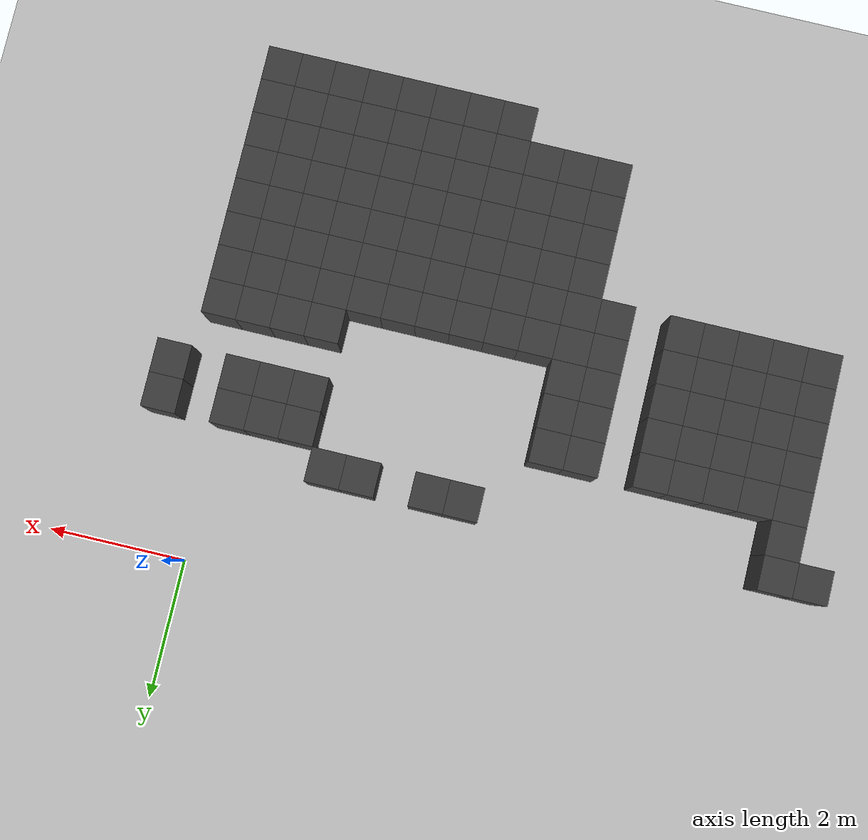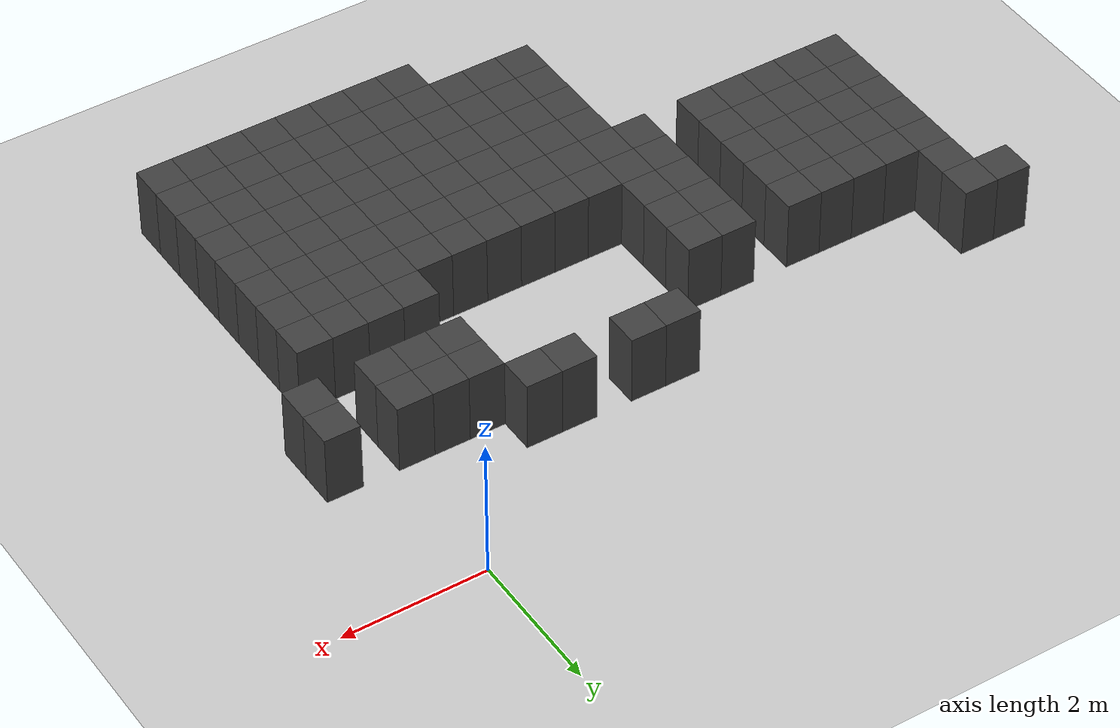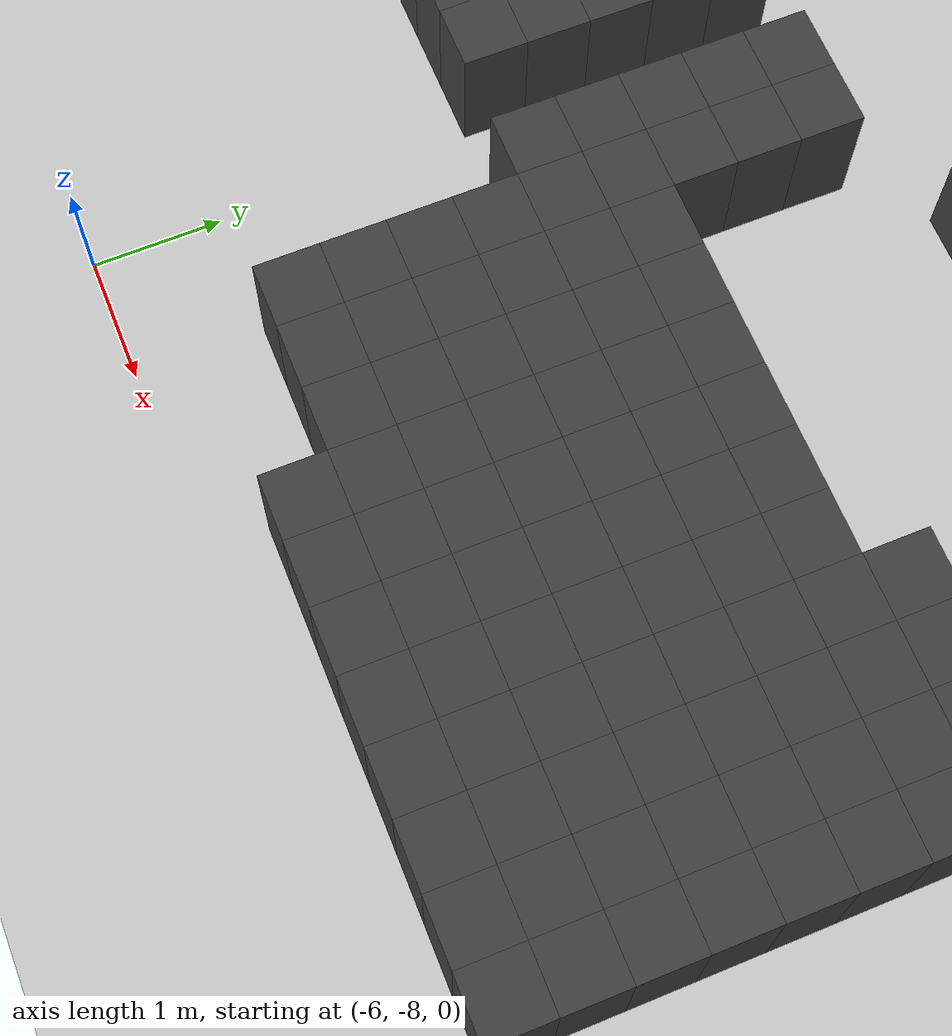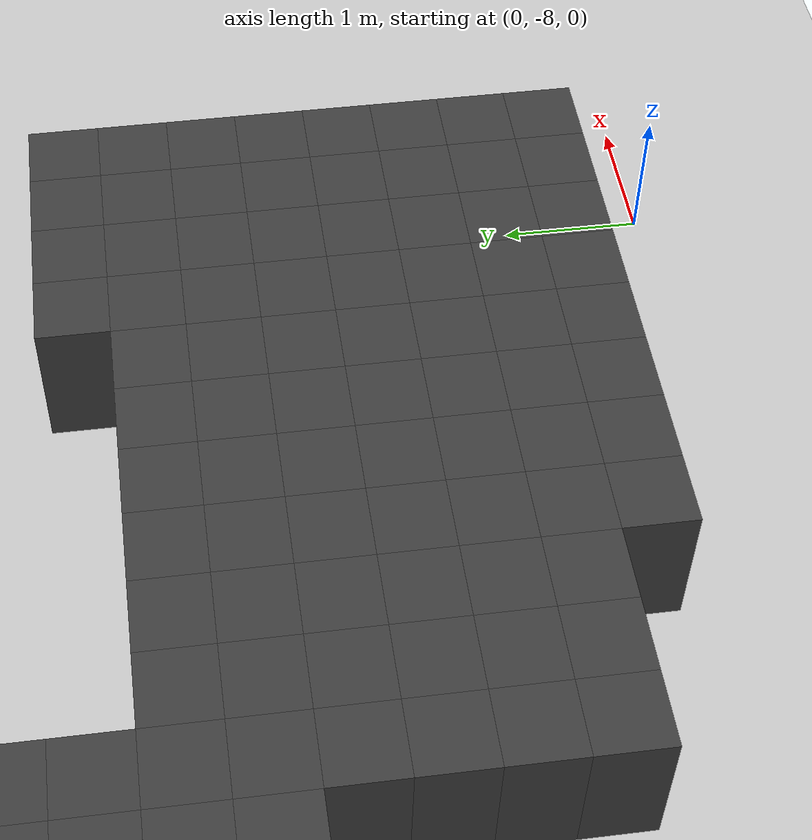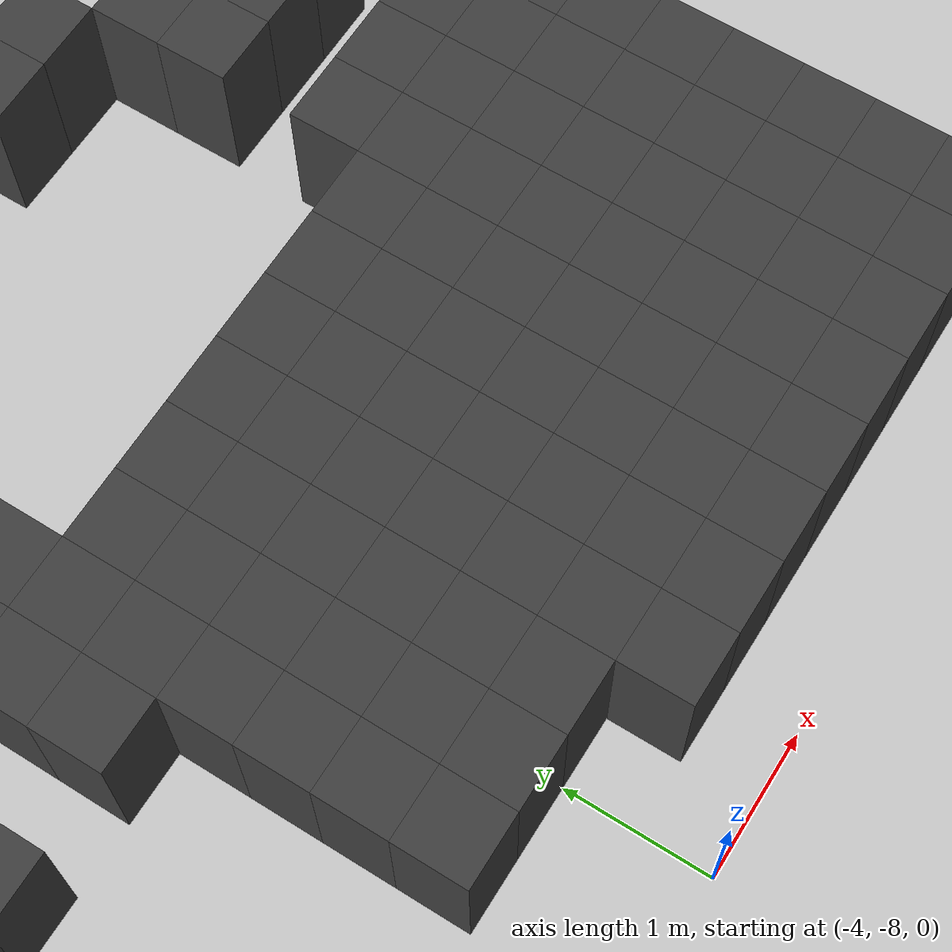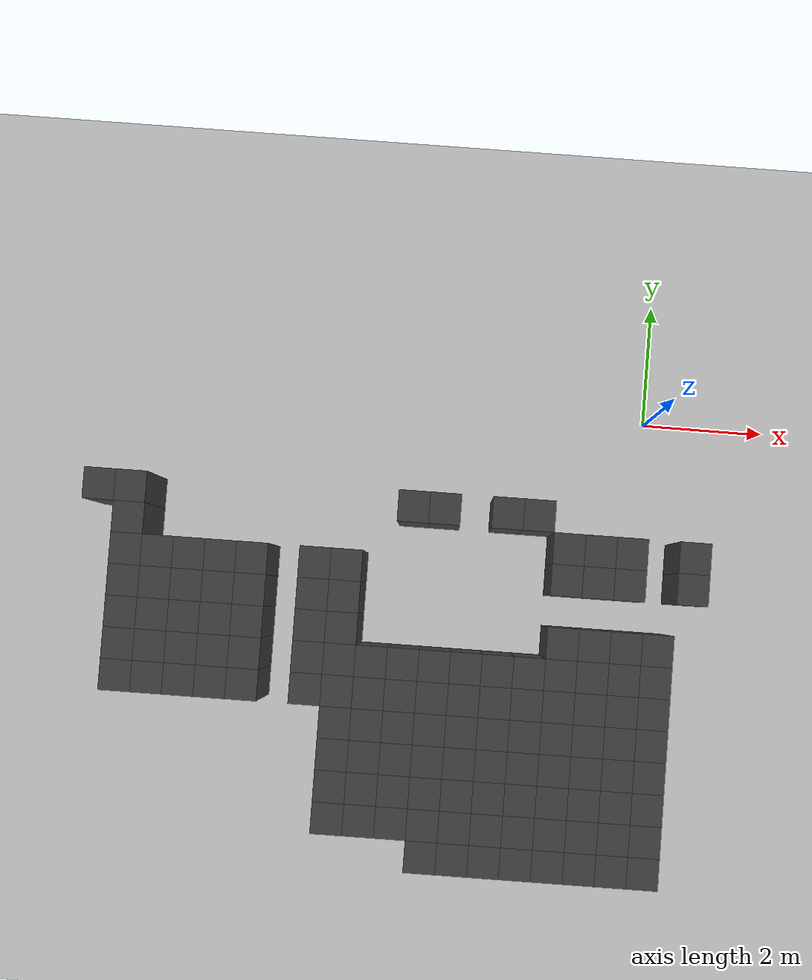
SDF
<sdf version="1.7">
 <world name="map_14190">
  <model name="ground_plane">
   <static>true</static>
   <link name="link">
    <collision name="collision">
     <geometry><plane><normal>0 0 1</normal><size>200 200</size></plane></geometry>
    </collision>
    <visual name="visual">
     <geometry><plane><normal>0 0 1</normal><size>200 200</size></plane></geometry>
     <material><ambient>0.8 0.8 0.8 1</ambient><diffuse>0.8 0.8 0.8 1</diffuse></material>
    </visual>
   </link>
  </model>
  <model name="maze_environment">
   <static>true</static>
   <link name="wall_992">
    <pose>-8.750 -1.750 0.500 0 0 0</pose>
    <collision name="col"><geometry><box><size>0.5 0.5 1.0</size></box></geometry></collision>
    <visual name="vis">
     <geometry><box><size>0.5 0.5 1.0</size></box></geometry>
     <material><ambient>0.15 0.15 0.15 1</ambient><diffuse>0.25 0.25 0.25 1</diffuse></material>
    </visual>
   </link>
   <link name="wall_993">
    <pose>-8.250 -1.750 0.500 0 0 0</pose>
    <collision name="col"><geometry><box><size>0.5 0.5 1.0</size></box></geometry></collision>
    <visual name="vis">
     <geometry><box><size>0.5 0.5 1.0</size></box></geometry>
     <material><ambient>0.15 0.15 0.15 1</ambient><diffuse>0.25 0.25 0.25 1</diffuse></material>
    </visual>
   </link>
   <link name="wall_994">
    <pose>-3.750 -1.750 0.500 0 0 0</pose>
    <collision name="col"><geometry><box><size>0.5 0.5 1.0</size></box></geometry></collision>
    <visual name="vis">
     <geometry><box><size>0.5 0.5 1.0</size></box></geometry>
     <material><ambient>0.15 0.15 0.15 1</ambient><diffuse>0.25 0.25 0.25 1</diffuse></material>
    </visual>
   </link>
   <link name="wall_995">
    <pose>-3.250 -1.750 0.500 0 0 0</pose>
    <collision name="col"><geometry><box><size>0.5 0.5 1.0</size></box></geometry></collision>
    <visual name="vis">
     <geometry><box><size>0.5 0.5 1.0</size></box></geometry>
     <material><ambient>0.15 0.15 0.15 1</ambient><diffuse>0.25 0.25 0.25 1</diffuse></material>
    </visual>
   </link>
   <link name="wall_996">
    <pose>-2.250 -1.750 0.500 0 0 0</pose>
    <collision name="col"><geometry><box><size>0.5 0.5 1.0</size></box></geometry></collision>
    <visual name="vis">
     <geometry><box><size>0.5 0.5 1.0</size></box></geometry>
     <material><ambient>0.15 0.15 0.15 1</ambient><diffuse>0.25 0.25 0.25 1</diffuse></material>
    </visual>
   </link>
   <link name="wall_997">
    <pose>-1.750 -1.750 0.500 0 0 0</pose>
    <collision name="col"><geometry><box><size>0.5 0.5 1.0</size></box></geometry></collision>
    <visual name="vis">
     <geometry><box><size>0.5 0.5 1.0</size></box></geometry>
     <material><ambient>0.15 0.15 0.15 1</ambient><diffuse>0.25 0.25 0.25 1</diffuse></material>
    </visual>
   </link>
   <link name="wall_1022">
    <pose>-8.250 -2.250 0.500 0 0 0</pose>
    <collision name="col"><geometry><box><size>0.5 0.5 1.0</size></box></geometry></collision>
    <visual name="vis">
     <geometry><box><size>0.5 0.5 1.0</size></box></geometry>
     <material><ambient>0.15 0.15 0.15 1</ambient><diffuse>0.25 0.25 0.25 1</diffuse></material>
    </visual>
   </link>
   <link name="wall_1023">
    <pose>-1.250 -2.250 0.500 0 0 0</pose>
    <collision name="col"><geometry><box><size>0.5 0.5 1.0</size></box></geometry></collision>
    <visual name="vis">
     <geometry><box><size>0.5 0.5 1.0</size></box></geometry>
     <material><ambient>0.15 0.15 0.15 1</ambient><diffuse>0.25 0.25 0.25 1</diffuse></material>
    </visual>
   </link>
   <link name="wall_1024">
    <pose>-0.750 -2.250 0.500 0 0 0</pose>
    <collision name="col"><geometry><box><size>0.5 0.5 1.0</size></box></geometry></collision>
    <visual name="vis">
     <geometry><box><size>0.5 0.5 1.0</size></box></geometry>
     <material><ambient>0.15 0.15 0.15 1</ambient><diffuse>0.25 0.25 0.25 1</diffuse></material>
    </visual>
   </link>
   <link name="wall_1025">
    <pose>-0.250 -2.250 0.500 0 0 0</pose>
    <collision name="col"><geometry><box><size>0.5 0.5 1.0</size></box></geometry></collision>
    <visual name="vis">
     <geometry><box><size>0.5 0.5 1.0</size></box></geometry>
     <material><ambient>0.15 0.15 0.15 1</ambient><diffuse>0.25 0.25 0.25 1</diffuse></material>
    </visual>
   </link>
   <link name="wall_1026">
    <pose>0.750 -2.250 0.500 0 0 0</pose>
    <collision name="col"><geometry><box><size>0.5 0.5 1.0</size></box></geometry></collision>
    <visual name="vis">
     <geometry><box><size>0.5 0.5 1.0</size></box></geometry>
     <material><ambient>0.15 0.15 0.15 1</ambient><diffuse>0.25 0.25 0.25 1</diffuse></material>
    </visual>
   </link>
   <link name="wall_1053">
    <pose>-8.250 -2.750 0.500 0 0 0</pose>
    <collision name="col"><geometry><box><size>0.5 0.5 1.0</size></box></geometry></collision>
    <visual name="vis">
     <geometry><box><size>0.5 0.5 1.0</size></box></geometry>
     <material><ambient>0.15 0.15 0.15 1</ambient><diffuse>0.25 0.25 0.25 1</diffuse></material>
    </visual>
   </link>
   <link name="wall_1054">
    <pose>-7.750 -2.750 0.500 0 0 0</pose>
    <collision name="col"><geometry><box><size>0.5 0.5 1.0</size></box></geometry></collision>
    <visual name="vis">
     <geometry><box><size>0.5 0.5 1.0</size></box></geometry>
     <material><ambient>0.15 0.15 0.15 1</ambient><diffuse>0.25 0.25 0.25 1</diffuse></material>
    </visual>
   </link>
   <link name="wall_1055">
    <pose>-7.250 -2.750 0.500 0 0 0</pose>
    <collision name="col"><geometry><box><size>0.5 0.5 1.0</size></box></geometry></collision>
    <visual name="vis">
     <geometry><box><size>0.5 0.5 1.0</size></box></geometry>
     <material><ambient>0.15 0.15 0.15 1</ambient><diffuse>0.25 0.25 0.25 1</diffuse></material>
    </visual>
   </link>
   <link name="wall_1056">
    <pose>-6.750 -2.750 0.500 0 0 0</pose>
    <collision name="col"><geometry><box><size>0.5 0.5 1.0</size></box></geometry></collision>
    <visual name="vis">
     <geometry><box><size>0.5 0.5 1.0</size></box></geometry>
     <material><ambient>0.15 0.15 0.15 1</ambient><diffuse>0.25 0.25 0.25 1</diffuse></material>
    </visual>
   </link>
   <link name="wall_1057">
    <pose>-6.250 -2.750 0.500 0 0 0</pose>
    <collision name="col"><geometry><box><size>0.5 0.5 1.0</size></box></geometry></collision>
    <visual name="vis">
     <geometry><box><size>0.5 0.5 1.0</size></box></geometry>
     <material><ambient>0.15 0.15 0.15 1</ambient><diffuse>0.25 0.25 0.25 1</diffuse></material>
    </visual>
   </link>
   <link name="wall_1058">
    <pose>-5.250 -2.750 0.500 0 0 0</pose>
    <collision name="col"><geometry><box><size>0.5 0.5 1.0</size></box></geometry></collision>
    <visual name="vis">
     <geometry><box><size>0.5 0.5 1.0</size></box></geometry>
     <material><ambient>0.15 0.15 0.15 1</ambient><diffuse>0.25 0.25 0.25 1</diffuse></material>
    </visual>
   </link>
   <link name="wall_1059">
    <pose>-4.750 -2.750 0.500 0 0 0</pose>
    <collision name="col"><geometry><box><size>0.5 0.5 1.0</size></box></geometry></collision>
    <visual name="vis">
     <geometry><box><size>0.5 0.5 1.0</size></box></geometry>
     <material><ambient>0.15 0.15 0.15 1</ambient><diffuse>0.25 0.25 0.25 1</diffuse></material>
    </visual>
   </link>
   <link name="wall_1060">
    <pose>-1.250 -2.750 0.500 0 0 0</pose>
    <collision name="col"><geometry><box><size>0.5 0.5 1.0</size></box></geometry></collision>
    <visual name="vis">
     <geometry><box><size>0.5 0.5 1.0</size></box></geometry>
     <material><ambient>0.15 0.15 0.15 1</ambient><diffuse>0.25 0.25 0.25 1</diffuse></material>
    </visual>
   </link>
   <link name="wall_1061">
    <pose>-0.750 -2.750 0.500 0 0 0</pose>
    <collision name="col"><geometry><box><size>0.5 0.5 1.0</size></box></geometry></collision>
    <visual name="vis">
     <geometry><box><size>0.5 0.5 1.0</size></box></geometry>
     <material><ambient>0.15 0.15 0.15 1</ambient><diffuse>0.25 0.25 0.25 1</diffuse></material>
    </visual>
   </link>
   <link name="wall_1062">
    <pose>-0.250 -2.750 0.500 0 0 0</pose>
    <collision name="col"><geometry><box><size>0.5 0.5 1.0</size></box></geometry></collision>
    <visual name="vis">
     <geometry><box><size>0.5 0.5 1.0</size></box></geometry>
     <material><ambient>0.15 0.15 0.15 1</ambient><diffuse>0.25 0.25 0.25 1</diffuse></material>
    </visual>
   </link>
   <link name="wall_1063">
    <pose>0.750 -2.750 0.500 0 0 0</pose>
    <collision name="col"><geometry><box><size>0.5 0.5 1.0</size></box></geometry></collision>
    <visual name="vis">
     <geometry><box><size>0.5 0.5 1.0</size></box></geometry>
     <material><ambient>0.15 0.15 0.15 1</ambient><diffuse>0.25 0.25 0.25 1</diffuse></material>
    </visual>
   </link>
   <link name="wall_1090">
    <pose>-8.250 -3.250 0.500 0 0 0</pose>
    <collision name="col"><geometry><box><size>0.5 0.5 1.0</size></box></geometry></collision>
    <visual name="vis">
     <geometry><box><size>0.5 0.5 1.0</size></box></geometry>
     <material><ambient>0.15 0.15 0.15 1</ambient><diffuse>0.25 0.25 0.25 1</diffuse></material>
    </visual>
   </link>
   <link name="wall_1091">
    <pose>-7.750 -3.250 0.500 0 0 0</pose>
    <collision name="col"><geometry><box><size>0.5 0.5 1.0</size></box></geometry></collision>
    <visual name="vis">
     <geometry><box><size>0.5 0.5 1.0</size></box></geometry>
     <material><ambient>0.15 0.15 0.15 1</ambient><diffuse>0.25 0.25 0.25 1</diffuse></material>
    </visual>
   </link>
   <link name="wall_1092">
    <pose>-7.250 -3.250 0.500 0 0 0</pose>
    <collision name="col"><geometry><box><size>0.5 0.5 1.0</size></box></geometry></collision>
    <visual name="vis">
     <geometry><box><size>0.5 0.5 1.0</size></box></geometry>
     <material><ambient>0.15 0.15 0.15 1</ambient><diffuse>0.25 0.25 0.25 1</diffuse></material>
    </visual>
   </link>
   <link name="wall_1093">
    <pose>-6.750 -3.250 0.500 0 0 0</pose>
    <collision name="col"><geometry><box><size>0.5 0.5 1.0</size></box></geometry></collision>
    <visual name="vis">
     <geometry><box><size>0.5 0.5 1.0</size></box></geometry>
     <material><ambient>0.15 0.15 0.15 1</ambient><diffuse>0.25 0.25 0.25 1</diffuse></material>
    </visual>
   </link>
   <link name="wall_1094">
    <pose>-6.250 -3.250 0.500 0 0 0</pose>
    <collision name="col"><geometry><box><size>0.5 0.5 1.0</size></box></geometry></collision>
    <visual name="vis">
     <geometry><box><size>0.5 0.5 1.0</size></box></geometry>
     <material><ambient>0.15 0.15 0.15 1</ambient><diffuse>0.25 0.25 0.25 1</diffuse></material>
    </visual>
   </link>
   <link name="wall_1095">
    <pose>-5.250 -3.250 0.500 0 0 0</pose>
    <collision name="col"><geometry><box><size>0.5 0.5 1.0</size></box></geometry></collision>
    <visual name="vis">
     <geometry><box><size>0.5 0.5 1.0</size></box></geometry>
     <material><ambient>0.15 0.15 0.15 1</ambient><diffuse>0.25 0.25 0.25 1</diffuse></material>
    </visual>
   </link>
   <link name="wall_1096">
    <pose>-4.750 -3.250 0.500 0 0 0</pose>
    <collision name="col"><geometry><box><size>0.5 0.5 1.0</size></box></geometry></collision>
    <visual name="vis">
     <geometry><box><size>0.5 0.5 1.0</size></box></geometry>
     <material><ambient>0.15 0.15 0.15 1</ambient><diffuse>0.25 0.25 0.25 1</diffuse></material>
    </visual>
   </link>
   <link name="wall_1124">
    <pose>-8.250 -3.750 0.500 0 0 0</pose>
    <collision name="col"><geometry><box><size>0.5 0.5 1.0</size></box></geometry></collision>
    <visual name="vis">
     <geometry><box><size>0.5 0.5 1.0</size></box></geometry>
     <material><ambient>0.15 0.15 0.15 1</ambient><diffuse>0.25 0.25 0.25 1</diffuse></material>
    </visual>
   </link>
   <link name="wall_1125">
    <pose>-7.750 -3.750 0.500 0 0 0</pose>
    <collision name="col"><geometry><box><size>0.5 0.5 1.0</size></box></geometry></collision>
    <visual name="vis">
     <geometry><box><size>0.5 0.5 1.0</size></box></geometry>
     <material><ambient>0.15 0.15 0.15 1</ambient><diffuse>0.25 0.25 0.25 1</diffuse></material>
    </visual>
   </link>
   <link name="wall_1126">
    <pose>-7.250 -3.750 0.500 0 0 0</pose>
    <collision name="col"><geometry><box><size>0.5 0.5 1.0</size></box></geometry></collision>
    <visual name="vis">
     <geometry><box><size>0.5 0.5 1.0</size></box></geometry>
     <material><ambient>0.15 0.15 0.15 1</ambient><diffuse>0.25 0.25 0.25 1</diffuse></material>
    </visual>
   </link>
   <link name="wall_1127">
    <pose>-6.750 -3.750 0.500 0 0 0</pose>
    <collision name="col"><geometry><box><size>0.5 0.5 1.0</size></box></geometry></collision>
    <visual name="vis">
     <geometry><box><size>0.5 0.5 1.0</size></box></geometry>
     <material><ambient>0.15 0.15 0.15 1</ambient><diffuse>0.25 0.25 0.25 1</diffuse></material>
    </visual>
   </link>
   <link name="wall_1128">
    <pose>-6.250 -3.750 0.500 0 0 0</pose>
    <collision name="col"><geometry><box><size>0.5 0.5 1.0</size></box></geometry></collision>
    <visual name="vis">
     <geometry><box><size>0.5 0.5 1.0</size></box></geometry>
     <material><ambient>0.15 0.15 0.15 1</ambient><diffuse>0.25 0.25 0.25 1</diffuse></material>
    </visual>
   </link>
   <link name="wall_1129">
    <pose>-5.250 -3.750 0.500 0 0 0</pose>
    <collision name="col"><geometry><box><size>0.5 0.5 1.0</size></box></geometry></collision>
    <visual name="vis">
     <geometry><box><size>0.5 0.5 1.0</size></box></geometry>
     <material><ambient>0.15 0.15 0.15 1</ambient><diffuse>0.25 0.25 0.25 1</diffuse></material>
    </visual>
   </link>
   <link name="wall_1130">
    <pose>-4.750 -3.750 0.500 0 0 0</pose>
    <collision name="col"><geometry><box><size>0.5 0.5 1.0</size></box></geometry></collision>
    <visual name="vis">
     <geometry><box><size>0.5 0.5 1.0</size></box></geometry>
     <material><ambient>0.15 0.15 0.15 1</ambient><diffuse>0.25 0.25 0.25 1</diffuse></material>
    </visual>
   </link>
   <link name="wall_1131">
    <pose>-1.250 -3.750 0.500 0 0 0</pose>
    <collision name="col"><geometry><box><size>0.5 0.5 1.0</size></box></geometry></collision>
    <visual name="vis">
     <geometry><box><size>0.5 0.5 1.0</size></box></geometry>
     <material><ambient>0.15 0.15 0.15 1</ambient><diffuse>0.25 0.25 0.25 1</diffuse></material>
    </visual>
   </link>
   <link name="wall_1132">
    <pose>-0.750 -3.750 0.500 0 0 0</pose>
    <collision name="col"><geometry><box><size>0.5 0.5 1.0</size></box></geometry></collision>
    <visual name="vis">
     <geometry><box><size>0.5 0.5 1.0</size></box></geometry>
     <material><ambient>0.15 0.15 0.15 1</ambient><diffuse>0.25 0.25 0.25 1</diffuse></material>
    </visual>
   </link>
   <link name="wall_1133">
    <pose>-0.250 -3.750 0.500 0 0 0</pose>
    <collision name="col"><geometry><box><size>0.5 0.5 1.0</size></box></geometry></collision>
    <visual name="vis">
     <geometry><box><size>0.5 0.5 1.0</size></box></geometry>
     <material><ambient>0.15 0.15 0.15 1</ambient><diffuse>0.25 0.25 0.25 1</diffuse></material>
    </visual>
   </link>
   <link name="wall_1134">
    <pose>0.250 -3.750 0.500 0 0 0</pose>
    <collision name="col"><geometry><box><size>0.5 0.5 1.0</size></box></geometry></collision>
    <visual name="vis">
     <geometry><box><size>0.5 0.5 1.0</size></box></geometry>
     <material><ambient>0.15 0.15 0.15 1</ambient><diffuse>0.25 0.25 0.25 1</diffuse></material>
    </visual>
   </link>
   <link name="wall_1159">
    <pose>-8.250 -4.250 0.500 0 0 0</pose>
    <collision name="col"><geometry><box><size>0.5 0.5 1.0</size></box></geometry></collision>
    <visual name="vis">
     <geometry><box><size>0.5 0.5 1.0</size></box></geometry>
     <material><ambient>0.15 0.15 0.15 1</ambient><diffuse>0.25 0.25 0.25 1</diffuse></material>
    </visual>
   </link>
   <link name="wall_1160">
    <pose>-7.750 -4.250 0.500 0 0 0</pose>
    <collision name="col"><geometry><box><size>0.5 0.5 1.0</size></box></geometry></collision>
    <visual name="vis">
     <geometry><box><size>0.5 0.5 1.0</size></box></geometry>
     <material><ambient>0.15 0.15 0.15 1</ambient><diffuse>0.25 0.25 0.25 1</diffuse></material>
    </visual>
   </link>
   <link name="wall_1161">
    <pose>-7.250 -4.250 0.500 0 0 0</pose>
    <collision name="col"><geometry><box><size>0.5 0.5 1.0</size></box></geometry></collision>
    <visual name="vis">
     <geometry><box><size>0.5 0.5 1.0</size></box></geometry>
     <material><ambient>0.15 0.15 0.15 1</ambient><diffuse>0.25 0.25 0.25 1</diffuse></material>
    </visual>
   </link>
   <link name="wall_1162">
    <pose>-6.750 -4.250 0.500 0 0 0</pose>
    <collision name="col"><geometry><box><size>0.5 0.5 1.0</size></box></geometry></collision>
    <visual name="vis">
     <geometry><box><size>0.5 0.5 1.0</size></box></geometry>
     <material><ambient>0.15 0.15 0.15 1</ambient><diffuse>0.25 0.25 0.25 1</diffuse></material>
    </visual>
   </link>
   <link name="wall_1163">
    <pose>-6.250 -4.250 0.500 0 0 0</pose>
    <collision name="col"><geometry><box><size>0.5 0.5 1.0</size></box></geometry></collision>
    <visual name="vis">
     <geometry><box><size>0.5 0.5 1.0</size></box></geometry>
     <material><ambient>0.15 0.15 0.15 1</ambient><diffuse>0.25 0.25 0.25 1</diffuse></material>
    </visual>
   </link>
   <link name="wall_1164">
    <pose>-5.250 -4.250 0.500 0 0 0</pose>
    <collision name="col"><geometry><box><size>0.5 0.5 1.0</size></box></geometry></collision>
    <visual name="vis">
     <geometry><box><size>0.5 0.5 1.0</size></box></geometry>
     <material><ambient>0.15 0.15 0.15 1</ambient><diffuse>0.25 0.25 0.25 1</diffuse></material>
    </visual>
   </link>
   <link name="wall_1165">
    <pose>-4.750 -4.250 0.500 0 0 0</pose>
    <collision name="col"><geometry><box><size>0.5 0.5 1.0</size></box></geometry></collision>
    <visual name="vis">
     <geometry><box><size>0.5 0.5 1.0</size></box></geometry>
     <material><ambient>0.15 0.15 0.15 1</ambient><diffuse>0.25 0.25 0.25 1</diffuse></material>
    </visual>
   </link>
   <link name="wall_1166">
    <pose>-4.250 -4.250 0.500 0 0 0</pose>
    <collision name="col"><geometry><box><size>0.5 0.5 1.0</size></box></geometry></collision>
    <visual name="vis">
     <geometry><box><size>0.5 0.5 1.0</size></box></geometry>
     <material><ambient>0.15 0.15 0.15 1</ambient><diffuse>0.25 0.25 0.25 1</diffuse></material>
    </visual>
   </link>
   <link name="wall_1167">
    <pose>-3.750 -4.250 0.500 0 0 0</pose>
    <collision name="col"><geometry><box><size>0.5 0.5 1.0</size></box></geometry></collision>
    <visual name="vis">
     <geometry><box><size>0.5 0.5 1.0</size></box></geometry>
     <material><ambient>0.15 0.15 0.15 1</ambient><diffuse>0.25 0.25 0.25 1</diffuse></material>
    </visual>
   </link>
   <link name="wall_1168">
    <pose>-3.250 -4.250 0.500 0 0 0</pose>
    <collision name="col"><geometry><box><size>0.5 0.5 1.0</size></box></geometry></collision>
    <visual name="vis">
     <geometry><box><size>0.5 0.5 1.0</size></box></geometry>
     <material><ambient>0.15 0.15 0.15 1</ambient><diffuse>0.25 0.25 0.25 1</diffuse></material>
    </visual>
   </link>
   <link name="wall_1169">
    <pose>-2.750 -4.250 0.500 0 0 0</pose>
    <collision name="col"><geometry><box><size>0.5 0.5 1.0</size></box></geometry></collision>
    <visual name="vis">
     <geometry><box><size>0.5 0.5 1.0</size></box></geometry>
     <material><ambient>0.15 0.15 0.15 1</ambient><diffuse>0.25 0.25 0.25 1</diffuse></material>
    </visual>
   </link>
   <link name="wall_1170">
    <pose>-2.250 -4.250 0.500 0 0 0</pose>
    <collision name="col"><geometry><box><size>0.5 0.5 1.0</size></box></geometry></collision>
    <visual name="vis">
     <geometry><box><size>0.5 0.5 1.0</size></box></geometry>
     <material><ambient>0.15 0.15 0.15 1</ambient><diffuse>0.25 0.25 0.25 1</diffuse></material>
    </visual>
   </link>
   <link name="wall_1171">
    <pose>-1.750 -4.250 0.500 0 0 0</pose>
    <collision name="col"><geometry><box><size>0.5 0.5 1.0</size></box></geometry></collision>
    <visual name="vis">
     <geometry><box><size>0.5 0.5 1.0</size></box></geometry>
     <material><ambient>0.15 0.15 0.15 1</ambient><diffuse>0.25 0.25 0.25 1</diffuse></material>
    </visual>
   </link>
   <link name="wall_1172">
    <pose>-1.250 -4.250 0.500 0 0 0</pose>
    <collision name="col"><geometry><box><size>0.5 0.5 1.0</size></box></geometry></collision>
    <visual name="vis">
     <geometry><box><size>0.5 0.5 1.0</size></box></geometry>
     <material><ambient>0.15 0.15 0.15 1</ambient><diffuse>0.25 0.25 0.25 1</diffuse></material>
    </visual>
   </link>
   <link name="wall_1173">
    <pose>-0.750 -4.250 0.500 0 0 0</pose>
    <collision name="col"><geometry><box><size>0.5 0.5 1.0</size></box></geometry></collision>
    <visual name="vis">
     <geometry><box><size>0.5 0.5 1.0</size></box></geometry>
     <material><ambient>0.15 0.15 0.15 1</ambient><diffuse>0.25 0.25 0.25 1</diffuse></material>
    </visual>
   </link>
   <link name="wall_1174">
    <pose>-0.250 -4.250 0.500 0 0 0</pose>
    <collision name="col"><geometry><box><size>0.5 0.5 1.0</size></box></geometry></collision>
    <visual name="vis">
     <geometry><box><size>0.5 0.5 1.0</size></box></geometry>
     <material><ambient>0.15 0.15 0.15 1</ambient><diffuse>0.25 0.25 0.25 1</diffuse></material>
    </visual>
   </link>
   <link name="wall_1175">
    <pose>0.250 -4.250 0.500 0 0 0</pose>
    <collision name="col"><geometry><box><size>0.5 0.5 1.0</size></box></geometry></collision>
    <visual name="vis">
     <geometry><box><size>0.5 0.5 1.0</size></box></geometry>
     <material><ambient>0.15 0.15 0.15 1</ambient><diffuse>0.25 0.25 0.25 1</diffuse></material>
    </visual>
   </link>
   <link name="wall_1200">
    <pose>-8.250 -4.750 0.500 0 0 0</pose>
    <collision name="col"><geometry><box><size>0.5 0.5 1.0</size></box></geometry></collision>
    <visual name="vis">
     <geometry><box><size>0.5 0.5 1.0</size></box></geometry>
     <material><ambient>0.15 0.15 0.15 1</ambient><diffuse>0.25 0.25 0.25 1</diffuse></material>
    </visual>
   </link>
   <link name="wall_1201">
    <pose>-7.750 -4.750 0.500 0 0 0</pose>
    <collision name="col"><geometry><box><size>0.5 0.5 1.0</size></box></geometry></collision>
    <visual name="vis">
     <geometry><box><size>0.5 0.5 1.0</size></box></geometry>
     <material><ambient>0.15 0.15 0.15 1</ambient><diffuse>0.25 0.25 0.25 1</diffuse></material>
    </visual>
   </link>
   <link name="wall_1202">
    <pose>-7.250 -4.750 0.500 0 0 0</pose>
    <collision name="col"><geometry><box><size>0.5 0.5 1.0</size></box></geometry></collision>
    <visual name="vis">
     <geometry><box><size>0.5 0.5 1.0</size></box></geometry>
     <material><ambient>0.15 0.15 0.15 1</ambient><diffuse>0.25 0.25 0.25 1</diffuse></material>
    </visual>
   </link>
   <link name="wall_1203">
    <pose>-6.750 -4.750 0.500 0 0 0</pose>
    <collision name="col"><geometry><box><size>0.5 0.5 1.0</size></box></geometry></collision>
    <visual name="vis">
     <geometry><box><size>0.5 0.5 1.0</size></box></geometry>
     <material><ambient>0.15 0.15 0.15 1</ambient><diffuse>0.25 0.25 0.25 1</diffuse></material>
    </visual>
   </link>
   <link name="wall_1204">
    <pose>-6.250 -4.750 0.500 0 0 0</pose>
    <collision name="col"><geometry><box><size>0.5 0.5 1.0</size></box></geometry></collision>
    <visual name="vis">
     <geometry><box><size>0.5 0.5 1.0</size></box></geometry>
     <material><ambient>0.15 0.15 0.15 1</ambient><diffuse>0.25 0.25 0.25 1</diffuse></material>
    </visual>
   </link>
   <link name="wall_1205">
    <pose>-5.250 -4.750 0.500 0 0 0</pose>
    <collision name="col"><geometry><box><size>0.5 0.5 1.0</size></box></geometry></collision>
    <visual name="vis">
     <geometry><box><size>0.5 0.5 1.0</size></box></geometry>
     <material><ambient>0.15 0.15 0.15 1</ambient><diffuse>0.25 0.25 0.25 1</diffuse></material>
    </visual>
   </link>
   <link name="wall_1206">
    <pose>-4.750 -4.750 0.500 0 0 0</pose>
    <collision name="col"><geometry><box><size>0.5 0.5 1.0</size></box></geometry></collision>
    <visual name="vis">
     <geometry><box><size>0.5 0.5 1.0</size></box></geometry>
     <material><ambient>0.15 0.15 0.15 1</ambient><diffuse>0.25 0.25 0.25 1</diffuse></material>
    </visual>
   </link>
   <link name="wall_1207">
    <pose>-4.250 -4.750 0.500 0 0 0</pose>
    <collision name="col"><geometry><box><size>0.5 0.5 1.0</size></box></geometry></collision>
    <visual name="vis">
     <geometry><box><size>0.5 0.5 1.0</size></box></geometry>
     <material><ambient>0.15 0.15 0.15 1</ambient><diffuse>0.25 0.25 0.25 1</diffuse></material>
    </visual>
   </link>
   <link name="wall_1208">
    <pose>-3.750 -4.750 0.500 0 0 0</pose>
    <collision name="col"><geometry><box><size>0.5 0.5 1.0</size></box></geometry></collision>
    <visual name="vis">
     <geometry><box><size>0.5 0.5 1.0</size></box></geometry>
     <material><ambient>0.15 0.15 0.15 1</ambient><diffuse>0.25 0.25 0.25 1</diffuse></material>
    </visual>
   </link>
   <link name="wall_1209">
    <pose>-3.250 -4.750 0.500 0 0 0</pose>
    <collision name="col"><geometry><box><size>0.5 0.5 1.0</size></box></geometry></collision>
    <visual name="vis">
     <geometry><box><size>0.5 0.5 1.0</size></box></geometry>
     <material><ambient>0.15 0.15 0.15 1</ambient><diffuse>0.25 0.25 0.25 1</diffuse></material>
    </visual>
   </link>
   <link name="wall_1210">
    <pose>-2.750 -4.750 0.500 0 0 0</pose>
    <collision name="col"><geometry><box><size>0.5 0.5 1.0</size></box></geometry></collision>
    <visual name="vis">
     <geometry><box><size>0.5 0.5 1.0</size></box></geometry>
     <material><ambient>0.15 0.15 0.15 1</ambient><diffuse>0.25 0.25 0.25 1</diffuse></material>
    </visual>
   </link>
   <link name="wall_1211">
    <pose>-2.250 -4.750 0.500 0 0 0</pose>
    <collision name="col"><geometry><box><size>0.5 0.5 1.0</size></box></geometry></collision>
    <visual name="vis">
     <geometry><box><size>0.5 0.5 1.0</size></box></geometry>
     <material><ambient>0.15 0.15 0.15 1</ambient><diffuse>0.25 0.25 0.25 1</diffuse></material>
    </visual>
   </link>
   <link name="wall_1212">
    <pose>-1.750 -4.750 0.500 0 0 0</pose>
    <collision name="col"><geometry><box><size>0.5 0.5 1.0</size></box></geometry></collision>
    <visual name="vis">
     <geometry><box><size>0.5 0.5 1.0</size></box></geometry>
     <material><ambient>0.15 0.15 0.15 1</ambient><diffuse>0.25 0.25 0.25 1</diffuse></material>
    </visual>
   </link>
   <link name="wall_1213">
    <pose>-1.250 -4.750 0.500 0 0 0</pose>
    <collision name="col"><geometry><box><size>0.5 0.5 1.0</size></box></geometry></collision>
    <visual name="vis">
     <geometry><box><size>0.5 0.5 1.0</size></box></geometry>
     <material><ambient>0.15 0.15 0.15 1</ambient><diffuse>0.25 0.25 0.25 1</diffuse></material>
    </visual>
   </link>
   <link name="wall_1214">
    <pose>-0.750 -4.750 0.500 0 0 0</pose>
    <collision name="col"><geometry><box><size>0.5 0.5 1.0</size></box></geometry></collision>
    <visual name="vis">
     <geometry><box><size>0.5 0.5 1.0</size></box></geometry>
     <material><ambient>0.15 0.15 0.15 1</ambient><diffuse>0.25 0.25 0.25 1</diffuse></material>
    </visual>
   </link>
   <link name="wall_1215">
    <pose>-0.250 -4.750 0.500 0 0 0</pose>
    <collision name="col"><geometry><box><size>0.5 0.5 1.0</size></box></geometry></collision>
    <visual name="vis">
     <geometry><box><size>0.5 0.5 1.0</size></box></geometry>
     <material><ambient>0.15 0.15 0.15 1</ambient><diffuse>0.25 0.25 0.25 1</diffuse></material>
    </visual>
   </link>
   <link name="wall_1216">
    <pose>0.250 -4.750 0.500 0 0 0</pose>
    <collision name="col"><geometry><box><size>0.5 0.5 1.0</size></box></geometry></collision>
    <visual name="vis">
     <geometry><box><size>0.5 0.5 1.0</size></box></geometry>
     <material><ambient>0.15 0.15 0.15 1</ambient><diffuse>0.25 0.25 0.25 1</diffuse></material>
    </visual>
   </link>
   <link name="wall_1233">
    <pose>-4.750 -5.250 0.500 0 0 0</pose>
    <collision name="col"><geometry><box><size>0.5 0.5 1.0</size></box></geometry></collision>
    <visual name="vis">
     <geometry><box><size>0.5 0.5 1.0</size></box></geometry>
     <material><ambient>0.15 0.15 0.15 1</ambient><diffuse>0.25 0.25 0.25 1</diffuse></material>
    </visual>
   </link>
   <link name="wall_1234">
    <pose>-4.250 -5.250 0.500 0 0 0</pose>
    <collision name="col"><geometry><box><size>0.5 0.5 1.0</size></box></geometry></collision>
    <visual name="vis">
     <geometry><box><size>0.5 0.5 1.0</size></box></geometry>
     <material><ambient>0.15 0.15 0.15 1</ambient><diffuse>0.25 0.25 0.25 1</diffuse></material>
    </visual>
   </link>
   <link name="wall_1235">
    <pose>-3.750 -5.250 0.500 0 0 0</pose>
    <collision name="col"><geometry><box><size>0.5 0.5 1.0</size></box></geometry></collision>
    <visual name="vis">
     <geometry><box><size>0.5 0.5 1.0</size></box></geometry>
     <material><ambient>0.15 0.15 0.15 1</ambient><diffuse>0.25 0.25 0.25 1</diffuse></material>
    </visual>
   </link>
   <link name="wall_1236">
    <pose>-3.250 -5.250 0.500 0 0 0</pose>
    <collision name="col"><geometry><box><size>0.5 0.5 1.0</size></box></geometry></collision>
    <visual name="vis">
     <geometry><box><size>0.5 0.5 1.0</size></box></geometry>
     <material><ambient>0.15 0.15 0.15 1</ambient><diffuse>0.25 0.25 0.25 1</diffuse></material>
    </visual>
   </link>
   <link name="wall_1237">
    <pose>-2.750 -5.250 0.500 0 0 0</pose>
    <collision name="col"><geometry><box><size>0.5 0.5 1.0</size></box></geometry></collision>
    <visual name="vis">
     <geometry><box><size>0.5 0.5 1.0</size></box></geometry>
     <material><ambient>0.15 0.15 0.15 1</ambient><diffuse>0.25 0.25 0.25 1</diffuse></material>
    </visual>
   </link>
   <link name="wall_1238">
    <pose>-2.250 -5.250 0.500 0 0 0</pose>
    <collision name="col"><geometry><box><size>0.5 0.5 1.0</size></box></geometry></collision>
    <visual name="vis">
     <geometry><box><size>0.5 0.5 1.0</size></box></geometry>
     <material><ambient>0.15 0.15 0.15 1</ambient><diffuse>0.25 0.25 0.25 1</diffuse></material>
    </visual>
   </link>
   <link name="wall_1239">
    <pose>-1.750 -5.250 0.500 0 0 0</pose>
    <collision name="col"><geometry><box><size>0.5 0.5 1.0</size></box></geometry></collision>
    <visual name="vis">
     <geometry><box><size>0.5 0.5 1.0</size></box></geometry>
     <material><ambient>0.15 0.15 0.15 1</ambient><diffuse>0.25 0.25 0.25 1</diffuse></material>
    </visual>
   </link>
   <link name="wall_1240">
    <pose>-1.250 -5.250 0.500 0 0 0</pose>
    <collision name="col"><geometry><box><size>0.5 0.5 1.0</size></box></geometry></collision>
    <visual name="vis">
     <geometry><box><size>0.5 0.5 1.0</size></box></geometry>
     <material><ambient>0.15 0.15 0.15 1</ambient><diffuse>0.25 0.25 0.25 1</diffuse></material>
    </visual>
   </link>
   <link name="wall_1241">
    <pose>-0.750 -5.250 0.500 0 0 0</pose>
    <collision name="col"><geometry><box><size>0.5 0.5 1.0</size></box></geometry></collision>
    <visual name="vis">
     <geometry><box><size>0.5 0.5 1.0</size></box></geometry>
     <material><ambient>0.15 0.15 0.15 1</ambient><diffuse>0.25 0.25 0.25 1</diffuse></material>
    </visual>
   </link>
   <link name="wall_1242">
    <pose>-0.250 -5.250 0.500 0 0 0</pose>
    <collision name="col"><geometry><box><size>0.5 0.5 1.0</size></box></geometry></collision>
    <visual name="vis">
     <geometry><box><size>0.5 0.5 1.0</size></box></geometry>
     <material><ambient>0.15 0.15 0.15 1</ambient><diffuse>0.25 0.25 0.25 1</diffuse></material>
    </visual>
   </link>
   <link name="wall_1243">
    <pose>0.250 -5.250 0.500 0 0 0</pose>
    <collision name="col"><geometry><box><size>0.5 0.5 1.0</size></box></geometry></collision>
    <visual name="vis">
     <geometry><box><size>0.5 0.5 1.0</size></box></geometry>
     <material><ambient>0.15 0.15 0.15 1</ambient><diffuse>0.25 0.25 0.25 1</diffuse></material>
    </visual>
   </link>
   <link name="wall_1268">
    <pose>-4.750 -5.750 0.500 0 0 0</pose>
    <collision name="col"><geometry><box><size>0.5 0.5 1.0</size></box></geometry></collision>
    <visual name="vis">
     <geometry><box><size>0.5 0.5 1.0</size></box></geometry>
     <material><ambient>0.15 0.15 0.15 1</ambient><diffuse>0.25 0.25 0.25 1</diffuse></material>
    </visual>
   </link>
   <link name="wall_1269">
    <pose>-4.250 -5.750 0.500 0 0 0</pose>
    <collision name="col"><geometry><box><size>0.5 0.5 1.0</size></box></geometry></collision>
    <visual name="vis">
     <geometry><box><size>0.5 0.5 1.0</size></box></geometry>
     <material><ambient>0.15 0.15 0.15 1</ambient><diffuse>0.25 0.25 0.25 1</diffuse></material>
    </visual>
   </link>
   <link name="wall_1270">
    <pose>-3.750 -5.750 0.500 0 0 0</pose>
    <collision name="col"><geometry><box><size>0.5 0.5 1.0</size></box></geometry></collision>
    <visual name="vis">
     <geometry><box><size>0.5 0.5 1.0</size></box></geometry>
     <material><ambient>0.15 0.15 0.15 1</ambient><diffuse>0.25 0.25 0.25 1</diffuse></material>
    </visual>
   </link>
   <link name="wall_1271">
    <pose>-3.250 -5.750 0.500 0 0 0</pose>
    <collision name="col"><geometry><box><size>0.5 0.5 1.0</size></box></geometry></collision>
    <visual name="vis">
     <geometry><box><size>0.5 0.5 1.0</size></box></geometry>
     <material><ambient>0.15 0.15 0.15 1</ambient><diffuse>0.25 0.25 0.25 1</diffuse></material>
    </visual>
   </link>
   <link name="wall_1272">
    <pose>-2.750 -5.750 0.500 0 0 0</pose>
    <collision name="col"><geometry><box><size>0.5 0.5 1.0</size></box></geometry></collision>
    <visual name="vis">
     <geometry><box><size>0.5 0.5 1.0</size></box></geometry>
     <material><ambient>0.15 0.15 0.15 1</ambient><diffuse>0.25 0.25 0.25 1</diffuse></material>
    </visual>
   </link>
   <link name="wall_1273">
    <pose>-2.250 -5.750 0.500 0 0 0</pose>
    <collision name="col"><geometry><box><size>0.5 0.5 1.0</size></box></geometry></collision>
    <visual name="vis">
     <geometry><box><size>0.5 0.5 1.0</size></box></geometry>
     <material><ambient>0.15 0.15 0.15 1</ambient><diffuse>0.25 0.25 0.25 1</diffuse></material>
    </visual>
   </link>
   <link name="wall_1274">
    <pose>-1.750 -5.750 0.500 0 0 0</pose>
    <collision name="col"><geometry><box><size>0.5 0.5 1.0</size></box></geometry></collision>
    <visual name="vis">
     <geometry><box><size>0.5 0.5 1.0</size></box></geometry>
     <material><ambient>0.15 0.15 0.15 1</ambient><diffuse>0.25 0.25 0.25 1</diffuse></material>
    </visual>
   </link>
   <link name="wall_1275">
    <pose>-1.250 -5.750 0.500 0 0 0</pose>
    <collision name="col"><geometry><box><size>0.5 0.5 1.0</size></box></geometry></collision>
    <visual name="vis">
     <geometry><box><size>0.5 0.5 1.0</size></box></geometry>
     <material><ambient>0.15 0.15 0.15 1</ambient><diffuse>0.25 0.25 0.25 1</diffuse></material>
    </visual>
   </link>
   <link name="wall_1276">
    <pose>-0.750 -5.750 0.500 0 0 0</pose>
    <collision name="col"><geometry><box><size>0.5 0.5 1.0</size></box></geometry></collision>
    <visual name="vis">
     <geometry><box><size>0.5 0.5 1.0</size></box></geometry>
     <material><ambient>0.15 0.15 0.15 1</ambient><diffuse>0.25 0.25 0.25 1</diffuse></material>
    </visual>
   </link>
   <link name="wall_1277">
    <pose>-0.250 -5.750 0.500 0 0 0</pose>
    <collision name="col"><geometry><box><size>0.5 0.5 1.0</size></box></geometry></collision>
    <visual name="vis">
     <geometry><box><size>0.5 0.5 1.0</size></box></geometry>
     <material><ambient>0.15 0.15 0.15 1</ambient><diffuse>0.25 0.25 0.25 1</diffuse></material>
    </visual>
   </link>
   <link name="wall_1278">
    <pose>0.250 -5.750 0.500 0 0 0</pose>
    <collision name="col"><geometry><box><size>0.5 0.5 1.0</size></box></geometry></collision>
    <visual name="vis">
     <geometry><box><size>0.5 0.5 1.0</size></box></geometry>
     <material><ambient>0.15 0.15 0.15 1</ambient><diffuse>0.25 0.25 0.25 1</diffuse></material>
    </visual>
   </link>
   <link name="wall_1303">
    <pose>-4.750 -6.250 0.500 0 0 0</pose>
    <collision name="col"><geometry><box><size>0.5 0.5 1.0</size></box></geometry></collision>
    <visual name="vis">
     <geometry><box><size>0.5 0.5 1.0</size></box></geometry>
     <material><ambient>0.15 0.15 0.15 1</ambient><diffuse>0.25 0.25 0.25 1</diffuse></material>
    </visual>
   </link>
   <link name="wall_1304">
    <pose>-4.250 -6.250 0.500 0 0 0</pose>
    <collision name="col"><geometry><box><size>0.5 0.5 1.0</size></box></geometry></collision>
    <visual name="vis">
     <geometry><box><size>0.5 0.5 1.0</size></box></geometry>
     <material><ambient>0.15 0.15 0.15 1</ambient><diffuse>0.25 0.25 0.25 1</diffuse></material>
    </visual>
   </link>
   <link name="wall_1305">
    <pose>-3.750 -6.250 0.500 0 0 0</pose>
    <collision name="col"><geometry><box><size>0.5 0.5 1.0</size></box></geometry></collision>
    <visual name="vis">
     <geometry><box><size>0.5 0.5 1.0</size></box></geometry>
     <material><ambient>0.15 0.15 0.15 1</ambient><diffuse>0.25 0.25 0.25 1</diffuse></material>
    </visual>
   </link>
   <link name="wall_1306">
    <pose>-3.250 -6.250 0.500 0 0 0</pose>
    <collision name="col"><geometry><box><size>0.5 0.5 1.0</size></box></geometry></collision>
    <visual name="vis">
     <geometry><box><size>0.5 0.5 1.0</size></box></geometry>
     <material><ambient>0.15 0.15 0.15 1</ambient><diffuse>0.25 0.25 0.25 1</diffuse></material>
    </visual>
   </link>
   <link name="wall_1307">
    <pose>-2.750 -6.250 0.500 0 0 0</pose>
    <collision name="col"><geometry><box><size>0.5 0.5 1.0</size></box></geometry></collision>
    <visual name="vis">
     <geometry><box><size>0.5 0.5 1.0</size></box></geometry>
     <material><ambient>0.15 0.15 0.15 1</ambient><diffuse>0.25 0.25 0.25 1</diffuse></material>
    </visual>
   </link>
   <link name="wall_1308">
    <pose>-2.250 -6.250 0.500 0 0 0</pose>
    <collision name="col"><geometry><box><size>0.5 0.5 1.0</size></box></geometry></collision>
    <visual name="vis">
     <geometry><box><size>0.5 0.5 1.0</size></box></geometry>
     <material><ambient>0.15 0.15 0.15 1</ambient><diffuse>0.25 0.25 0.25 1</diffuse></material>
    </visual>
   </link>
   <link name="wall_1309">
    <pose>-1.750 -6.250 0.500 0 0 0</pose>
    <collision name="col"><geometry><box><size>0.5 0.5 1.0</size></box></geometry></collision>
    <visual name="vis">
     <geometry><box><size>0.5 0.5 1.0</size></box></geometry>
     <material><ambient>0.15 0.15 0.15 1</ambient><diffuse>0.25 0.25 0.25 1</diffuse></material>
    </visual>
   </link>
   <link name="wall_1310">
    <pose>-1.250 -6.250 0.500 0 0 0</pose>
    <collision name="col"><geometry><box><size>0.5 0.5 1.0</size></box></geometry></collision>
    <visual name="vis">
     <geometry><box><size>0.5 0.5 1.0</size></box></geometry>
     <material><ambient>0.15 0.15 0.15 1</ambient><diffuse>0.25 0.25 0.25 1</diffuse></material>
    </visual>
   </link>
   <link name="wall_1311">
    <pose>-0.750 -6.250 0.500 0 0 0</pose>
    <collision name="col"><geometry><box><size>0.5 0.5 1.0</size></box></geometry></collision>
    <visual name="vis">
     <geometry><box><size>0.5 0.5 1.0</size></box></geometry>
     <material><ambient>0.15 0.15 0.15 1</ambient><diffuse>0.25 0.25 0.25 1</diffuse></material>
    </visual>
   </link>
   <link name="wall_1312">
    <pose>-0.250 -6.250 0.500 0 0 0</pose>
    <collision name="col"><geometry><box><size>0.5 0.5 1.0</size></box></geometry></collision>
    <visual name="vis">
     <geometry><box><size>0.5 0.5 1.0</size></box></geometry>
     <material><ambient>0.15 0.15 0.15 1</ambient><diffuse>0.25 0.25 0.25 1</diffuse></material>
    </visual>
   </link>
   <link name="wall_1313">
    <pose>0.250 -6.250 0.500 0 0 0</pose>
    <collision name="col"><geometry><box><size>0.5 0.5 1.0</size></box></geometry></collision>
    <visual name="vis">
     <geometry><box><size>0.5 0.5 1.0</size></box></geometry>
     <material><ambient>0.15 0.15 0.15 1</ambient><diffuse>0.25 0.25 0.25 1</diffuse></material>
    </visual>
   </link>
   <link name="wall_1344">
    <pose>-4.750 -6.750 0.500 0 0 0</pose>
    <collision name="col"><geometry><box><size>0.5 0.5 1.0</size></box></geometry></collision>
    <visual name="vis">
     <geometry><box><size>0.5 0.5 1.0</size></box></geometry>
     <material><ambient>0.15 0.15 0.15 1</ambient><diffuse>0.25 0.25 0.25 1</diffuse></material>
    </visual>
   </link>
   <link name="wall_1345">
    <pose>-4.250 -6.750 0.500 0 0 0</pose>
    <collision name="col"><geometry><box><size>0.5 0.5 1.0</size></box></geometry></collision>
    <visual name="vis">
     <geometry><box><size>0.5 0.5 1.0</size></box></geometry>
     <material><ambient>0.15 0.15 0.15 1</ambient><diffuse>0.25 0.25 0.25 1</diffuse></material>
    </visual>
   </link>
   <link name="wall_1346">
    <pose>-3.750 -6.750 0.500 0 0 0</pose>
    <collision name="col"><geometry><box><size>0.5 0.5 1.0</size></box></geometry></collision>
    <visual name="vis">
     <geometry><box><size>0.5 0.5 1.0</size></box></geometry>
     <material><ambient>0.15 0.15 0.15 1</ambient><diffuse>0.25 0.25 0.25 1</diffuse></material>
    </visual>
   </link>
   <link name="wall_1347">
    <pose>-3.250 -6.750 0.500 0 0 0</pose>
    <collision name="col"><geometry><box><size>0.5 0.5 1.0</size></box></geometry></collision>
    <visual name="vis">
     <geometry><box><size>0.5 0.5 1.0</size></box></geometry>
     <material><ambient>0.15 0.15 0.15 1</ambient><diffuse>0.25 0.25 0.25 1</diffuse></material>
    </visual>
   </link>
   <link name="wall_1348">
    <pose>-2.750 -6.750 0.500 0 0 0</pose>
    <collision name="col"><geometry><box><size>0.5 0.5 1.0</size></box></geometry></collision>
    <visual name="vis">
     <geometry><box><size>0.5 0.5 1.0</size></box></geometry>
     <material><ambient>0.15 0.15 0.15 1</ambient><diffuse>0.25 0.25 0.25 1</diffuse></material>
    </visual>
   </link>
   <link name="wall_1349">
    <pose>-2.250 -6.750 0.500 0 0 0</pose>
    <collision name="col"><geometry><box><size>0.5 0.5 1.0</size></box></geometry></collision>
    <visual name="vis">
     <geometry><box><size>0.5 0.5 1.0</size></box></geometry>
     <material><ambient>0.15 0.15 0.15 1</ambient><diffuse>0.25 0.25 0.25 1</diffuse></material>
    </visual>
   </link>
   <link name="wall_1350">
    <pose>-1.750 -6.750 0.500 0 0 0</pose>
    <collision name="col"><geometry><box><size>0.5 0.5 1.0</size></box></geometry></collision>
    <visual name="vis">
     <geometry><box><size>0.5 0.5 1.0</size></box></geometry>
     <material><ambient>0.15 0.15 0.15 1</ambient><diffuse>0.25 0.25 0.25 1</diffuse></material>
    </visual>
   </link>
   <link name="wall_1351">
    <pose>-1.250 -6.750 0.500 0 0 0</pose>
    <collision name="col"><geometry><box><size>0.5 0.5 1.0</size></box></geometry></collision>
    <visual name="vis">
     <geometry><box><size>0.5 0.5 1.0</size></box></geometry>
     <material><ambient>0.15 0.15 0.15 1</ambient><diffuse>0.25 0.25 0.25 1</diffuse></material>
    </visual>
   </link>
   <link name="wall_1352">
    <pose>-0.750 -6.750 0.500 0 0 0</pose>
    <collision name="col"><geometry><box><size>0.5 0.5 1.0</size></box></geometry></collision>
    <visual name="vis">
     <geometry><box><size>0.5 0.5 1.0</size></box></geometry>
     <material><ambient>0.15 0.15 0.15 1</ambient><diffuse>0.25 0.25 0.25 1</diffuse></material>
    </visual>
   </link>
   <link name="wall_1353">
    <pose>-0.250 -6.750 0.500 0 0 0</pose>
    <collision name="col"><geometry><box><size>0.5 0.5 1.0</size></box></geometry></collision>
    <visual name="vis">
     <geometry><box><size>0.5 0.5 1.0</size></box></geometry>
     <material><ambient>0.15 0.15 0.15 1</ambient><diffuse>0.25 0.25 0.25 1</diffuse></material>
    </visual>
   </link>
   <link name="wall_1354">
    <pose>0.250 -6.750 0.500 0 0 0</pose>
    <collision name="col"><geometry><box><size>0.5 0.5 1.0</size></box></geometry></collision>
    <visual name="vis">
     <geometry><box><size>0.5 0.5 1.0</size></box></geometry>
     <material><ambient>0.15 0.15 0.15 1</ambient><diffuse>0.25 0.25 0.25 1</diffuse></material>
    </visual>
   </link>
   <link name="wall_1388">
    <pose>-3.250 -7.250 0.500 0 0 0</pose>
    <collision name="col"><geometry><box><size>0.5 0.5 1.0</size></box></geometry></collision>
    <visual name="vis">
     <geometry><box><size>0.5 0.5 1.0</size></box></geometry>
     <material><ambient>0.15 0.15 0.15 1</ambient><diffuse>0.25 0.25 0.25 1</diffuse></material>
    </visual>
   </link>
   <link name="wall_1389">
    <pose>-2.750 -7.250 0.500 0 0 0</pose>
    <collision name="col"><geometry><box><size>0.5 0.5 1.0</size></box></geometry></collision>
    <visual name="vis">
     <geometry><box><size>0.5 0.5 1.0</size></box></geometry>
     <material><ambient>0.15 0.15 0.15 1</ambient><diffuse>0.25 0.25 0.25 1</diffuse></material>
    </visual>
   </link>
   <link name="wall_1390">
    <pose>-2.250 -7.250 0.500 0 0 0</pose>
    <collision name="col"><geometry><box><size>0.5 0.5 1.0</size></box></geometry></collision>
    <visual name="vis">
     <geometry><box><size>0.5 0.5 1.0</size></box></geometry>
     <material><ambient>0.15 0.15 0.15 1</ambient><diffuse>0.25 0.25 0.25 1</diffuse></material>
    </visual>
   </link>
   <link name="wall_1391">
    <pose>-1.750 -7.250 0.500 0 0 0</pose>
    <collision name="col"><geometry><box><size>0.5 0.5 1.0</size></box></geometry></collision>
    <visual name="vis">
     <geometry><box><size>0.5 0.5 1.0</size></box></geometry>
     <material><ambient>0.15 0.15 0.15 1</ambient><diffuse>0.25 0.25 0.25 1</diffuse></material>
    </visual>
   </link>
   <link name="wall_1392">
    <pose>-1.250 -7.250 0.500 0 0 0</pose>
    <collision name="col"><geometry><box><size>0.5 0.5 1.0</size></box></geometry></collision>
    <visual name="vis">
     <geometry><box><size>0.5 0.5 1.0</size></box></geometry>
     <material><ambient>0.15 0.15 0.15 1</ambient><diffuse>0.25 0.25 0.25 1</diffuse></material>
    </visual>
   </link>
   <link name="wall_1393">
    <pose>-0.750 -7.250 0.500 0 0 0</pose>
    <collision name="col"><geometry><box><size>0.5 0.5 1.0</size></box></geometry></collision>
    <visual name="vis">
     <geometry><box><size>0.5 0.5 1.0</size></box></geometry>
     <material><ambient>0.15 0.15 0.15 1</ambient><diffuse>0.25 0.25 0.25 1</diffuse></material>
    </visual>
   </link>
   <link name="wall_1394">
    <pose>-0.250 -7.250 0.500 0 0 0</pose>
    <collision name="col"><geometry><box><size>0.5 0.5 1.0</size></box></geometry></collision>
    <visual name="vis">
     <geometry><box><size>0.5 0.5 1.0</size></box></geometry>
     <material><ambient>0.15 0.15 0.15 1</ambient><diffuse>0.25 0.25 0.25 1</diffuse></material>
    </visual>
   </link>
   <link name="wall_1395">
    <pose>0.250 -7.250 0.500 0 0 0</pose>
    <collision name="col"><geometry><box><size>0.5 0.5 1.0</size></box></geometry></collision>
    <visual name="vis">
     <geometry><box><size>0.5 0.5 1.0</size></box></geometry>
     <material><ambient>0.15 0.15 0.15 1</ambient><diffuse>0.25 0.25 0.25 1</diffuse></material>
    </visual>
   </link>
  </model>
 </world>
</sdf>
